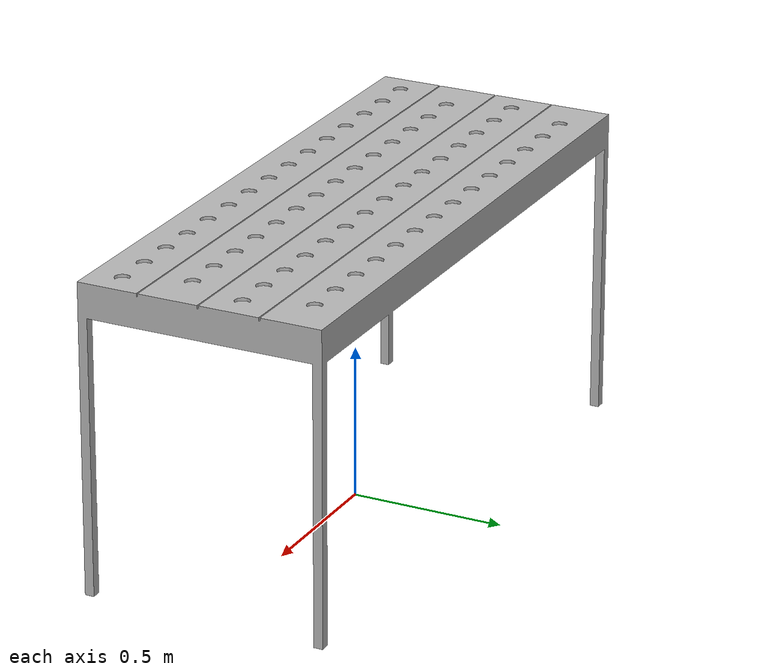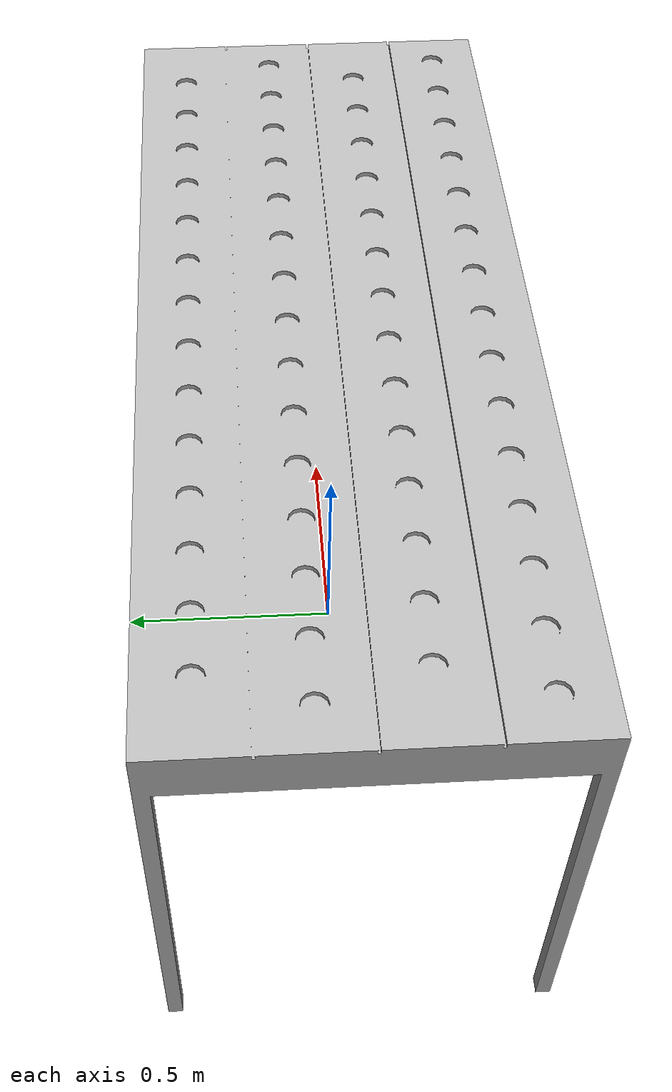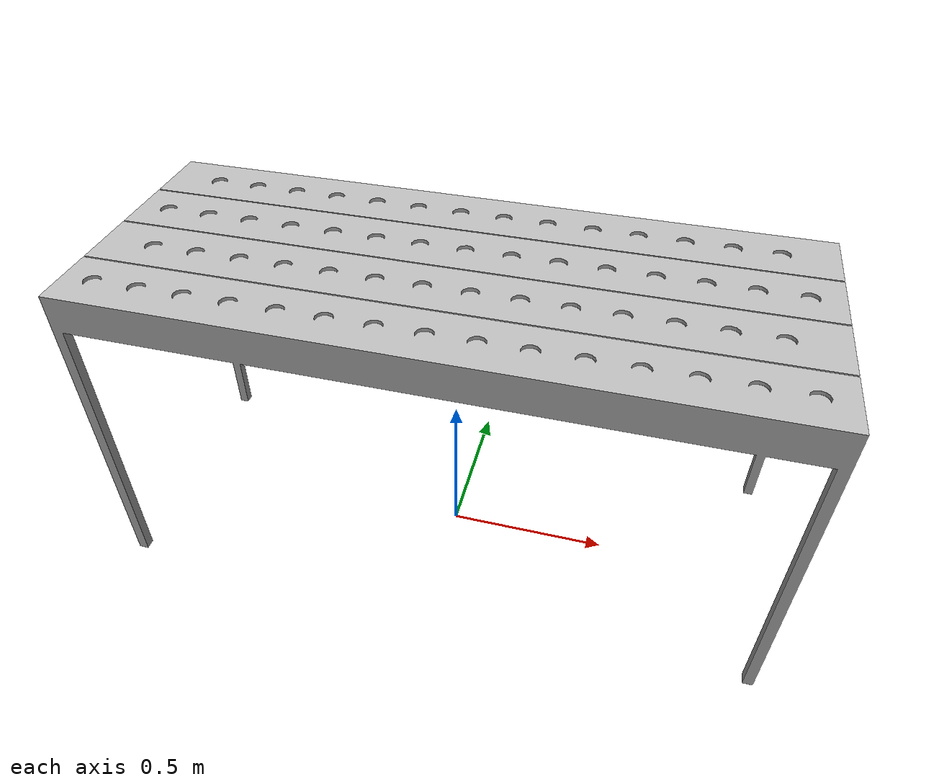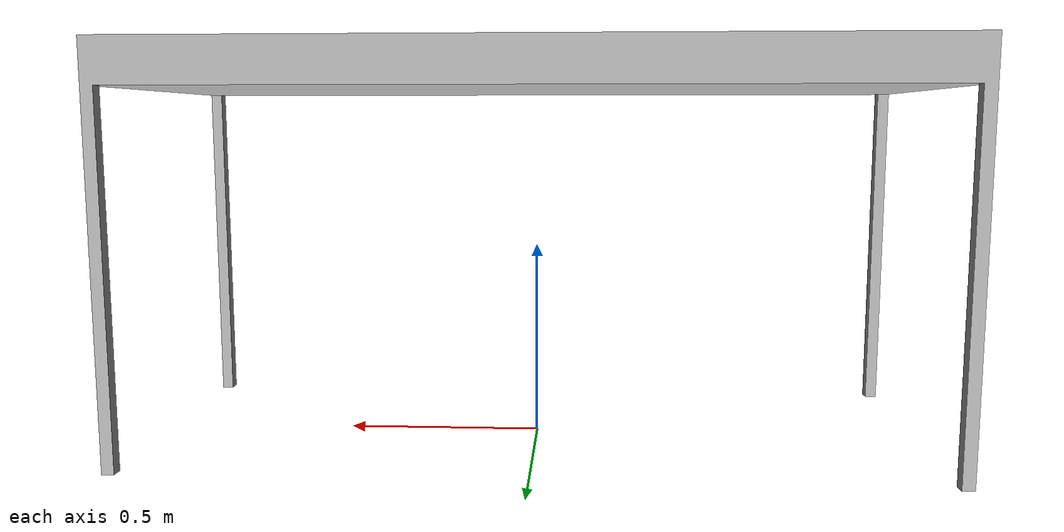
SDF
<?xml version="1.0" ?>
<sdf version="1.5">
 <model name="rack">
  <pose>0 0 0 0 0 0</pose>
  <static>true</static>
  <link name="link">
   <inertial>
    <origin xyz="0 0 0" rpy="0 0 0"/>
    <mass value="1"/>
   </inertial>
   <collision name="rack">
    <geometry>
      <mesh>
        <uri>model://rack/meshes/rack.stl</uri>
        <scale>0.001 0.001 0.0006</scale>
      </mesh>
    </geometry>
   </collision>
   <visual name="rack">
    <geometry>
      <mesh>
        <uri>model://rack/meshes/rack.stl</uri>
        <scale>0.001 0.001 0.001</scale>
      </mesh>
    </geometry>
   </visual>
  </link>
 </model>
</sdf>
